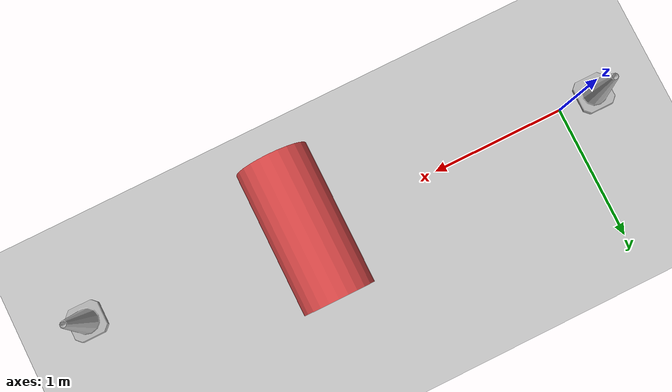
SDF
<sdf version="1.6">
 <world name="default">
  <model name="ground_plane">
   <static>1</static>
   <link name="link">
    <collision name="collision">
     <geometry><plane><normal>0 0 1</normal><size>100 100</size></plane></geometry>
     <surface><friction><ode><mu>100</mu><mu2>50</mu2></ode></friction></surface>
    </collision>
    <visual name="visual">
     <cast_shadows>0</cast_shadows>
     <geometry><plane><normal>0 0 1</normal><size>100 100</size></plane></geometry>
     <material>
      <script><uri>file://media/materials/scripts/gazebo.material</uri><name>Gazebo/Grey</name></script>
     </material>
    </visual>
   </link>
  </model>
  <light name="sun" type="directional">
   <pose>0 0 10 0 -0 0</pose>
   <diffuse>0.8 0.8 0.8 1</diffuse>
   <specular>0.2 0.2 0.2 1</specular>
   <attenuation>
    <range>1000</range>
    <constant>0.9</constant>
    <linear>0.01</linear>
    <quadratic>0.001</quadratic>
   </attenuation>
   <direction>-0.5 0.1 -0.9</direction>
  </light>
  <plugin name="ros_interface_plugin" filename="librotors_gazebo_ros_interface_plugin.so"/>
  <spherical_coordinates>
   <surface_model>EARTH_WGS84</surface_model>
   <latitude_deg>47.3667</latitude_deg>
   <longitude_deg>8.55</longitude_deg>
   <elevation>500</elevation>
   <heading_deg>0</heading_deg>
  </spherical_coordinates>
  <model name="Construction Cone">
   <link name="link">
    <collision name="collision">
     <geometry>
      <mesh><scale>5 5 5</scale><uri>model://construction_cone/meshes/construction_cone.dae</uri></mesh>
     </geometry>
    </collision>
    <visual name="visual">
     <geometry>
      <mesh><scale>5 5 5</scale><uri>model://construction_cone/meshes/construction_cone.dae</uri></mesh>
     </geometry>
    </visual>
    <inertial>
     <inertia><ixx>1</ixx><ixy>0</ixy><ixz>0</ixz><iyy>1</iyy><iyz>0</iyz><izz>1</izz></inertia>
     <mass>1</mass>
    </inertial>
   </link>
   <pose>-0.274349 0.000704 -6e-06 0 7.4e-05 0</pose>
  </model>
  <model name="Construction Cone_0">
   <link name="link">
    <collision name="collision">
     <geometry>
      <mesh><scale>5 5 5</scale><uri>model://construction_cone/meshes/construction_cone.dae</uri></mesh>
     </geometry>
    </collision>
    <visual name="visual">
     <geometry>
      <mesh><scale>5 5 5</scale><uri>model://construction_cone/meshes/construction_cone.dae</uri></mesh>
     </geometry>
    </visual>
    <inertial>
     <inertia><ixx>1</ixx><ixy>0</ixy><ixz>0</ixz><iyy>1</iyy><iyz>0</iyz><izz>1</izz></inertia>
     <mass>1</mass>
    </inertial>
   </link>
   <pose>3.67 -0.141105 -6e-06 0 7.4e-05 0</pose>
  </model>
  <physics name="default_physics" default="0" type="ode">
   <ode>
    <solver>
     <type>quick</type>
     <iters>1000</iters>
     <sor>1.3</sor>
     <use_dynamic_moi_rescaling>0</use_dynamic_moi_rescaling>
    </solver>
    <constraints>
     <cfm>0</cfm>
     <erp>0.2</erp>
     <contact_max_correcting_vel>100</contact_max_correcting_vel>
     <contact_surface_layer>0.001</contact_surface_layer>
    </constraints>
   </ode>
   <max_step_size>0.01</max_step_size>
   <real_time_factor>1</real_time_factor>
   <real_time_update_rate>100</real_time_update_rate>
  </physics>
  <scene><shadows>0</shadows><ambient>0.4 0.4 0.4 1</ambient><background>0.7 0.7 0.7 1</background></scene>
  <gravity>0 0 -9.8</gravity>
  <magnetic_field>6e-06 2.3e-05 -4.2e-05</magnetic_field>
  <atmosphere type="adiabatic"/>
  <model name="unit_cylinder11">
   <static>1</static>
   <link name="unit_cylinder11::link">
    <inertial>
     <mass>100</mass>
     <inertia><ixx>8.89583</ixx><ixy>0</ixy><ixz>0</ixz><iyy>8.89583</iyy><iyz>0</iyz><izz>1.125</izz></inertia>
    </inertial>
    <visual name="visual">
     <geometry><cylinder><radius>0.25</radius><length>1</length></cylinder></geometry>
     <material>
      <script><name>Gazebo/Grey</name><uri>file://media/materials/scripts/gazebo.material</uri></script>
      <shader type="pixel"><normal_map>__default__</normal_map></shader>
      <ambient>0.9 0.3 0.3 1</ambient>
      <diffuse>0.7 0.7 0.7 1</diffuse>
      <specular>0.01 0.01 0.01 1</specular>
      <emissive>0 0 0 1</emissive>
     </material>
    </visual>
    <collision name="collision">
     <geometry><cylinder><radius>0.25</radius><length>1</length></cylinder></geometry>
     <surface>
      <friction>
       <ode><mu>1</mu><mu2>1</mu2><fdir1>0 0 0</fdir1><slip1>0</slip1><slip2>0</slip2></ode>
       <torsional>
        <coefficient>1</coefficient>
        <patch_radius>0</patch_radius>
        <surface_radius>0</surface_radius>
        <use_patch_radius>1</use_patch_radius>
        <ode><slip>0</slip></ode>
       </torsional>
      </friction>
      <bounce><restitution_coefficient>0</restitution_coefficient><threshold>1e+06</threshold></bounce>
      <contact>
       <collide_without_contact>0</collide_without_contact>
       <collide_without_contact_bitmask>1</collide_without_contact_bitmask>
       <collide_bitmask>1</collide_bitmask>
       <ode>
        <soft_cfm>0</soft_cfm>
        <soft_erp>0.2</soft_erp>
        <kp>1e+13</kp>
        <kd>1</kd>
        <max_vel>0.01</max_vel>
        <min_depth>0</min_depth>
       </ode>
       <bullet>
        <split_impulse>1</split_impulse>
        <split_impulse_penetration_threshold>-0.01</split_impulse_penetration_threshold>
        <soft_cfm>0</soft_cfm>
        <soft_erp>0.2</soft_erp>
        <kp>1e+13</kp>
        <kd>1</kd>
       </bullet>
      </contact>
     </surface>
    </collision>
   </link>
   <static>1</static>
   <pose>2 0 0.6 -1.5708 0 0</pose>
  </model>
 </world>
</sdf>
